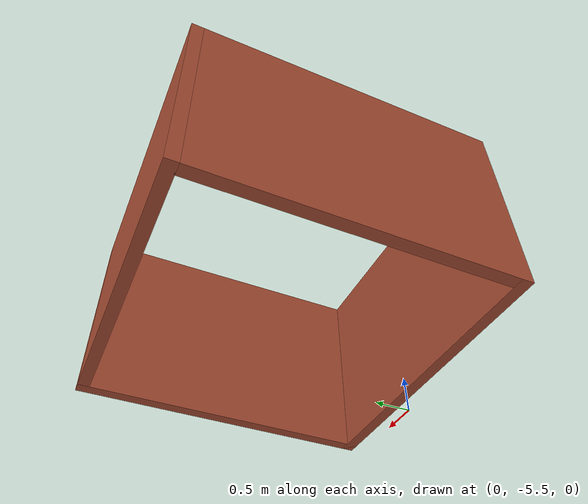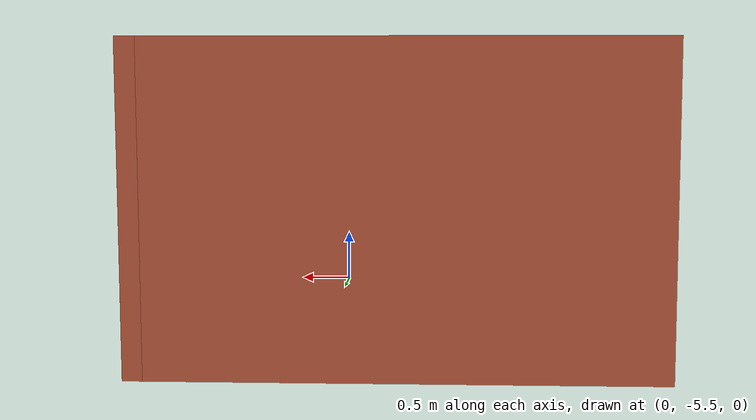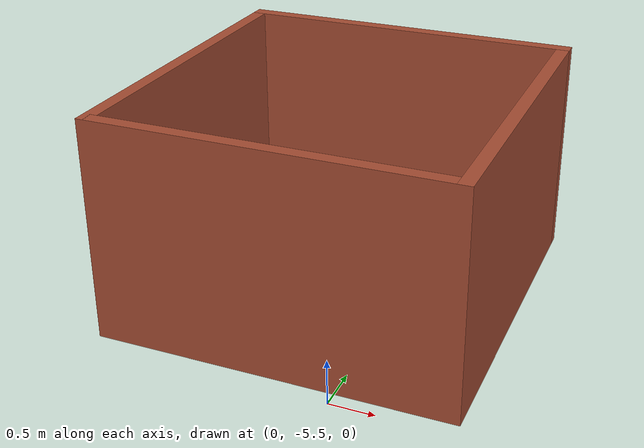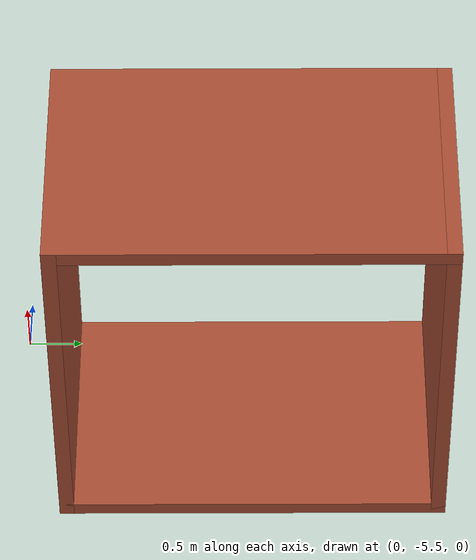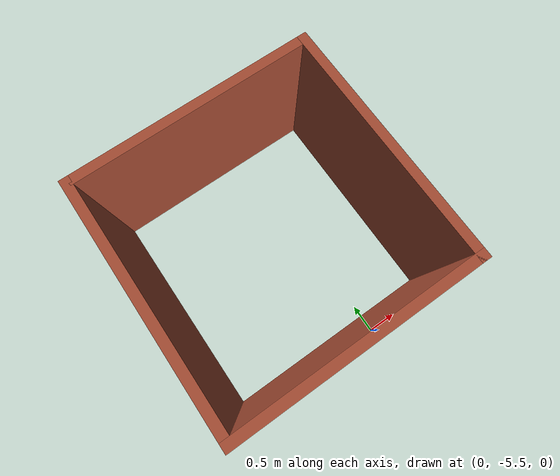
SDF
<?xml version='1.0'?>
<sdf version='1.7'>
  <model name='4x4_room'>
    <pose>-0.70696 -2.67034 0 0 -0 0</pose>
    <link name='Wall_0'>
      <collision name='Wall_0_Collision'>
        <geometry>
          <box>
            <size>4 0.15 2.5</size>
          </box>
        </geometry>
        <pose>0 0 1.25 0 -0 0</pose>
      </collision>
      <visual name='Wall_0_Visual'>
        <pose>0 0 1.25 0 -0 0</pose>
        <geometry>
          <box>
            <size>4 0.15 2.5</size>
          </box>
        </geometry>
        <material>
          <script>
            <uri>file://media/materials/scripts/gazebo.material</uri>
            <name>Gazebo/Bricks</name>
          </script>
          <ambient>1 1 1 1</ambient>
        </material>
        <meta>
          <layer>0</layer>
        </meta>
      </visual>
      <pose>0 1.25466 0 0 -0 3.14159</pose>
    </link>
    <link name='Wall_3'>
      <collision name='Wall_3_Collision'>
        <geometry>
          <box>
            <size>4 0.15 2.5</size>
          </box>
        </geometry>
        <pose>0 0 1.25 0 -0 0</pose>
      </collision>
      <visual name='Wall_3_Visual'>
        <pose>0 0 1.25 0 -0 0</pose>
        <geometry>
          <box>
            <size>4 0.15 2.5</size>
          </box>
        </geometry>
        <material>
          <script>
            <uri>file://media/materials/scripts/gazebo.material</uri>
            <name>Gazebo/Bricks</name>
          </script>
          <ambient>1 1 1 1</ambient>
        </material>
        <meta>
          <layer>0</layer>
        </meta>
      </visual>
      <pose>-1.925 -0.670339 0 0 -0 -1.5708</pose>
    </link>
    <link name='Wall_4'>
      <collision name='Wall_4_Collision'>
        <geometry>
          <box>
            <size>4 0.15 2.5</size>
          </box>
        </geometry>
        <pose>0 0 1.25 0 -0 0</pose>
      </collision>
      <visual name='Wall_4_Visual'>
        <pose>0 0 1.25 0 -0 0</pose>
        <geometry>
          <box>
            <size>4 0.15 2.5</size>
          </box>
        </geometry>
        <material>
          <script>
            <uri>file://media/materials/scripts/gazebo.material</uri>
            <name>Gazebo/Bricks</name>
          </script>
          <ambient>1 1 1 1</ambient>
        </material>
        <meta>
          <layer>0</layer>
        </meta>
      </visual>
      <pose>0 -2.59534 0 0 -0 0</pose>
    </link>
    <link name='Wall_5'>
      <collision name='Wall_5_Collision'>
        <geometry>
          <box>
            <size>4 0.15 2.5</size>
          </box>
        </geometry>
        <pose>0 0 1.25 0 -0 0</pose>
      </collision>
      <visual name='Wall_5_Visual'>
        <pose>0 0 1.25 0 -0 0</pose>
        <geometry>
          <box>
            <size>4 0.15 2.5</size>
          </box>
        </geometry>
        <material>
          <script>
            <uri>file://media/materials/scripts/gazebo.material</uri>
            <name>Gazebo/Bricks</name>
          </script>
          <ambient>1 1 1 1</ambient>
        </material>
        <meta>
          <layer>0</layer>
        </meta>
      </visual>
      <pose>1.925 -0.670339 0 0 -0 1.5708</pose>
    </link>
    <static>1</static>
  </model>
</sdf>
